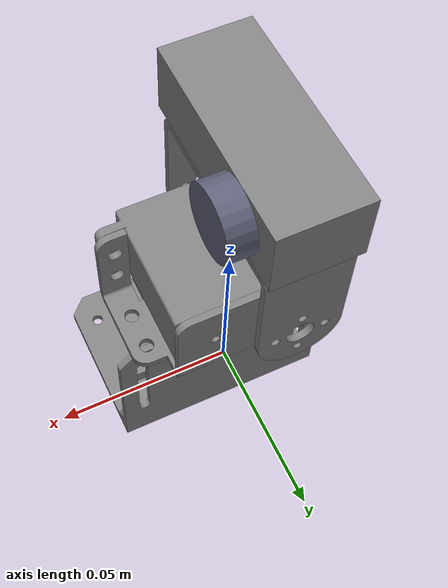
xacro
<?xml version="1.0"?>
<robot xmlns:xacro="http://www.ros.org/wiki/xacro" name="ptcam_robot">
  <!-- Import robot description -->
  <xacro:include filename="$(find ptcam_robot)/urdf/ptcam_robot_description.urdf.xacro" />

  <!-- Import ros2_control description -->
  <xacro:include filename="$(find ptcam_robot)/urdf/ptcam_robot.ros2_control.xacro" />

</robot>

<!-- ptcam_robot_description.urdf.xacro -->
<robot name="ptcam_robot" xmlns:xacro="http://www.ros.org/wiki/xacro">
  <material name="gray">
    <color rgba="0.5 0.5 0.5 1.0"/>
  </material>

  <material name="gray_trans">
    <color rgba="0.37 0.38 0.47 1.0"/>
  </material>

  <link name="base_link">
    <visual>
      <geometry>
        <mesh filename="package://ptcam_robot/meshes/base.stl" scale="0.001 0.001 0.001"/>
      </geometry>
      <origin xyz="0 0 0" rpy="1.57 0 0"/>
      <material name="gray"/>
    </visual>
  </link>

  <link name="pan_link">
    <visual>
      <geometry>
        <mesh filename="package://ptcam_robot/meshes/dss-p05_servo.stl" scale="0.001 0.001 0.001"/>
      </geometry>
      <origin xyz="-0.0377 -0.0101 -0.018" rpy="1.5708 0 1.5708"/>
      <material name="gray"/>
    </visual>
  </link>

  <link name="tilt_link">
    <visual>
      <geometry>
        <mesh filename="package://ptcam_robot/meshes/dss-p05_servo.stl" scale="0.001 0.001 0.001"/>
      </geometry>
      <origin xyz="0.0175 0.023 0.0145" rpy="3.1416 1.5708 0"/>
      <material name="gray"/>
    </visual>
  </link>

  <link name="u_bracket_link">
    <visual>
      <geometry>
        <mesh filename="package://ptcam_robot/meshes/u_bracket.stl" scale="0.001 0.001 0.001"/>
      </geometry>
      <origin xyz="0 0 0.030" rpy="-1.5708 0 1.5708"/>
      <material name="gray"/>
    </visual>
  </link>

  <link name="multi_bracket_link">
    <visual>
      <geometry>
        <mesh filename="package://ptcam_robot/meshes/multi_bracket.stl" scale="0.001 0.001 0.001"/>
      </geometry>
      <origin xyz="-0.010 0.0255 -0.001" rpy="1.5708 0 0"/>
      <material name="gray"/>
    </visual>
  </link>

  <joint name="base_joint" type="fixed">
    <parent link="base_link"/>
    <child link="pan_link"/>
    <origin xyz="0.010 -0.012 0" rpy="0 0 0"/>
  </joint>

  <joint name="pan_joint" type="revolute">
    <parent link="pan_link"/>
    <child link="multi_bracket_link"/>
    <origin xyz="0.0 0.0 0.025" rpy="0 0 0"/>
    <axis xyz="0 0 1"/>
    <limit lower="0" upper="3.1416" effort="0.5" velocity="1.0"/>
    <dynamics damping="0.1" friction="0.1"/>
  </joint>

  <joint name="multi_bracket_joint" type="fixed">
    <parent link="multi_bracket_link"/>
    <child link="tilt_link"/>
    <origin xyz="0 0 0.010" rpy="0 0 0"/>
  </joint>

  <joint name="tilt_joint" type="revolute">
    <parent link="tilt_link"/>
    <child link="u_bracket_link"/>
    <origin xyz="-0.020 0.005 0.0045" rpy="0 1.5708 0"/>
    <axis xyz="0 -1 0"/>
    <limit lower="1.0472" upper="2.0944" effort="0.5" velocity="1.0"/>
    <dynamics damping="0.1" friction="0.1"/>
  </joint>

  <link name="camera_link">
    <visual>
      <geometry>
        <box size="0.060 0.025 0.020"/>
      </geometry>
      <origin xyz="0 0 0" rpy="0 0 0"/>
      <material name="gray"/>
    </visual>
  </link>

  <link name="camera_lens_link">
    <visual>
      <geometry>
         <cylinder length="0.020" radius="0.010"/>
      </geometry>
      <origin xyz="0 0 0" rpy="0 0 0"/>
      <material name="gray_trans"/>
    </visual>
  </link>

  <joint name="camera_joint" type="fixed">
    <parent link="u_bracket_link"/>
    <child link="camera_link"/>
    <origin xyz="0 0 0.0415" rpy="0 0 1.5708"/>
  </joint>

  <joint name="camera_lens_joint" type="fixed">
    <parent link="camera_link"/>
    <child link="camera_lens_link"/>
    <origin xyz="0.014 -0.010 0" rpy="0 1.5708 1.5708"/>
  </joint>

</robot>
